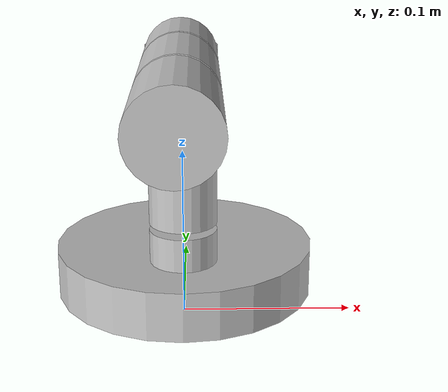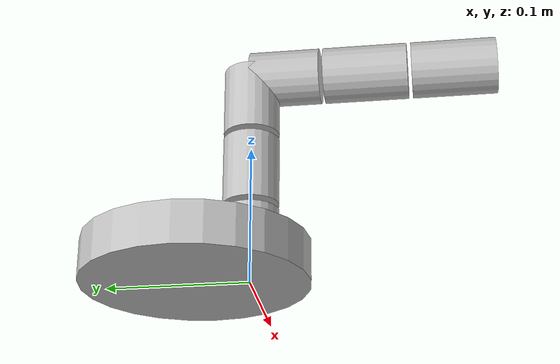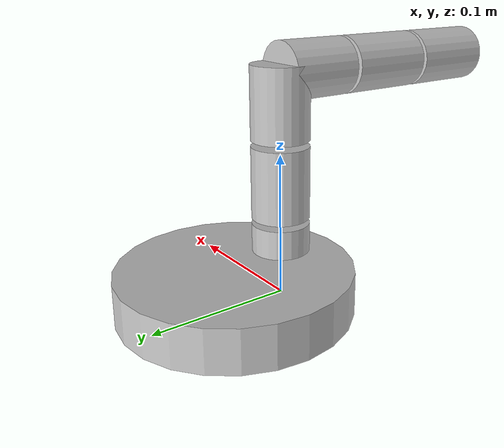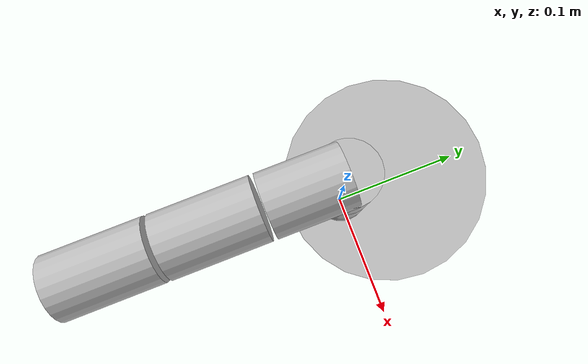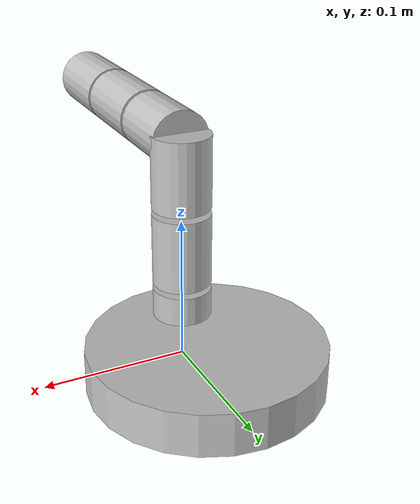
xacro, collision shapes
<?xml version="1.0"?>
<robot name="poppy" xmlns:xacro="http://ros.org/wiki/xacro">
  <xacro:include filename="$(find poppy_description)/urdf/poppy.xacro" />
  <xacro:include filename="$(find poppy_description)/urdf/poppy.ros2_control.xacro" />

  <link name="world"/>

  <xacro:poppy parent="world">
    <origin xyz="0 0 0" rpy="0 0 0" />
  </xacro:poppy>

  <xacro:poppy_ros2_control name="poppy_ros2_control" />
</robot>

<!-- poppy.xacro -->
<robot xmlns:xacro="http://www.ros.org/wiki/xacro">
<!-- Import Rviz colors -->
<xacro:include filename="$(find poppy_description)/urdf/poppy.material.xacro" />

  <xacro:macro name="poppy" params="parent *origin">
  <joint name="origin_to_link1" type="fixed">
    <xacro:insert_block name="origin" />
    <parent link="${parent}" />
    <child link="base_link" />
    <axis xyz="0 0 1" />
  </joint>

  <!-- Base link -->
  <link name="base_link">
    <visual>
      <origin xyz="0 0 0" rpy="0 0 0" />
      <geometry>
        <mesh filename="package://poppy_description/meshes/base.dae" />
      </geometry>
      <material name="darkgrey"/>
    </visual>
    <collision>
      <origin xyz="0 0.038 0.015" rpy="0 0 0" />
      <geometry>
        <cylinder length="0.03" radius="0.08" />
      </geometry>
    </collision>
  </link>
  <!-- Motor 1 -->
  <joint name="m1" type="revolute">
    <origin xyz="0 0 0.0327993216120967" rpy="0 0 0" />
    <parent link="base_link" />
    <child link="link1" />
    <axis xyz="0 0 1" />
      <limit velocity="10.1" effort="1.0" lower="${-150*(pi/180)}" upper="${150*(pi/180)}" />
  </joint>
  <!-- Link 1 -->
  <link name="link1">
    <visual>
      <origin xyz="0 0 0" rpy="0 0 0" />
      <geometry>
        <mesh filename="package://poppy_description/meshes/long_U.dae" />
      </geometry>
      <material name="darkgrey"/>
    </visual>
    <collision>
      <origin xyz="0 0 0.01" rpy="0 0 0" />
      <geometry>
        <cylinder length="0.02" radius="0.02" />
      </geometry>
    </collision>
    <inertial>
      <mass value="0.1" />
      <inertia ixx="0.03" iyy="0.03" izz="0.03" ixy="0.0" ixz="0.0" iyz="0.0" />
    </inertial>
  </link>
  <!-- Motor 2 -->
  <joint name="m2" type="revolute">
    <origin xyz="0 0 0.0240006783879033" rpy="0 -1.5707963267949 0" />
    <parent link="link1" />
    <child link="link2" />
    <axis xyz="0 0 1" />
      <limit velocity="10.1" effort="1.0" lower="${-150*(pi/180)}" upper="${150*(pi/180)}" />
  </joint>
  <!-- link2 -->
  <link name="link2">
    <visual>
      <origin xyz="0 0 0" rpy="0 1.5707963267949 0" />
      <geometry>
        <mesh filename="package://poppy_description/meshes/section_1.dae" />
      </geometry>
      <material name="darkgrey"/>
    </visual>
    <collision>
      <origin xyz="0.025 0 0" rpy="0 1.5707963267949 0" />
      <geometry>
        <cylinder length="0.05" radius="0.02" />
      </geometry>
    </collision>
    <inertial>
      <mass value="0.1" />
      <inertia ixx="0.03" iyy="0.03" izz="0.03" ixy="0.0" ixz="0.0" iyz="0.0" />
    </inertial>
  </link>
  <!-- Motor 3 -->
  <joint name="m3" type="revolute">
    <origin xyz="0.054 0 0" rpy="0 0 0" />
    <parent link="link2" />
    <child link="link3" />
    <axis xyz="0 0 1" />
      <limit velocity="10.1" effort="1.0" lower="${-150*(pi/180)}" upper="${150*(pi/180)}" />
  </joint>
  <!-- link3 -->
  <link name="link3">
    <visual>
      <origin xyz="0 0 0" rpy="0 1.5707963267949 0" />
      <geometry>
        <mesh filename="package://poppy_description/meshes/section_2.dae" />
      </geometry>
      <material name="darkgrey"/>
    </visual>
    <collision>
      <origin xyz="0.025 0 0" rpy="0 1.5707963267949 0" />
      <geometry>
        <cylinder length="0.05" radius="0.02" />
      </geometry>
    </collision>
    <inertial>
      <mass value="0.1" />
      <inertia ixx="0.03" iyy="0.03" izz="0.03" ixy="0.0" ixz="0.0" iyz="0.0" />
    </inertial>
  </link>
  <!-- Motor 4 -->
  <joint name="m4" type="revolute">
    <origin xyz="0.045 0 0" rpy="0 -1.5707963267949 0" />
    <parent link="link3" />
    <child link="link4" />
    <axis xyz="0 0 -1" />
      <limit velocity="10.1" effort="1.0" lower="${-150*(pi/180)}" upper="${150*(pi/180)}" />
  </joint>
  <!-- link4 -->
  <link name="link4">
    <visual>
      <origin xyz="0 0 0" rpy="0 3.14159268 0" />
      <geometry>
        <mesh filename="package://poppy_description/meshes/section_3.dae" />
      </geometry>
      <material name="darkgrey"/>
    </visual>
    <collision>
      <origin xyz="0 -0.025 0" rpy="1.5707963267949 0 0" />
      <geometry>
        <cylinder length="0.05" radius="0.02" />
      </geometry>
    </collision>
    <inertial>
      <mass value="0.1" />
      <inertia ixx="0.03" iyy="0.03" izz="0.03" ixy="0.0" ixz="0.0" iyz="0.0" />
    </inertial>
  </link>
    <!-- Motor 5 -->
  <joint name="m5" type="revolute">
    <origin xyz="0 -0.048 0" rpy="0 -1.5707963267949 0" />
    <parent link="link4" />
    <child link="link5" />
    <axis xyz="0 0 -1" />
  <limit velocity="10.1" effort="1.0" lower="${-150*(pi/180)}" upper="${150*(pi/180)}" />
  </joint>
  <!-- link5 -->
  <link name="link5">
    <visual>
      <origin xyz="0 -0.058 0" rpy="0 -1.5707963267949 0" />
      <geometry>
        <mesh filename="package://poppy_description/meshes/section_4.dae" />
      </geometry>
      <material name="darkgrey"/>
    </visual>
    <collision>
      <origin xyz="0 -0.035 0" rpy="1.5707963267949 0 0" />
      <geometry>
        <cylinder length="0.06" radius="0.02" />
        <box size="0.05 0.02 0.03" />
      </geometry>
    </collision>
    <inertial>
      <mass value="0.1" />
      <inertia ixx="0.03" iyy="0.03" izz="0.03" ixy="0.0" ixz="0.0" iyz="0.0" />
    </inertial>
  </link>
  <!--Fixed tip -->
  <joint name="t6g" type="fixed">
    <origin xyz="0 -0.116 0" rpy="0 0 0" />
    <parent link="link5" />
    <child link="virtual_tip" />
  </joint>
  <link name="virtual_tip" />
  <!-- gripper -->
  <!-- Motor 6 -->
  <joint name="m6" type="revolute">
    <origin xyz="0 0.058 0" rpy="0 -1.5707963267949 0" />
    <parent link="virtual_tip" />
    <child link="gripper" />
    <axis xyz="0 0 1" />
    <limit velocity="10.1" effort="1.0" lower="${-90*(pi/180)}" upper="${25*(pi/180)}" />
  </joint>
  <link name="gripper">
    <visual>
      <origin xyz="0 0 0" rpy="0 0 0" />
      <geometry>
      <mesh filename="package://poppy_description/meshes/gripper.dae" />
      </geometry>
      <material name="darkgrey"/>
    </visual>
    <collision>
      <origin xyz="0 -0.04 0" rpy="-1.5707963267949 0 0" />
      <geometry>
        <cylinder length="0.06" radius="0.02" />
      </geometry>
    </collision>
    <inertial>
      <mass value="0.1" />
      <inertia ixx="0.03" iyy="0.03" izz="0.03" ixy="0.0" ixz="0.0" iyz="0.0" />
    </inertial>
  </link>
  <!-- Moving tip of gripper -->
  <joint name="t7m" type="fixed">
    <origin xyz="0 -0.052 0" rpy="-1.5707963267949 0 0" />
    <parent link="gripper" />
    <child link="moving_tip" />
  </joint>
  <link name="moving_tip" />
</xacro:macro>
</robot>

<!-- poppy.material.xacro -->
<robot>

  <material name="black">
    <color rgba="0.0 0.0 0.0 1.0"/>
  </material>

  <material name="white">
    <color rgba="1.0 1.0 1.0 1.0"/>
  </material>

  <material name="red">
    <color rgba="0.8 0.0 0.0 1.0"/>
  </material>

  <material name="blue">
    <color rgba="0.0 0.0 0.8 1.0"/>
  </material>

  <material name="green">
    <color rgba="0.0 0.8 0.0 1.0"/>
  </material>

  <material name="grey">
    <color rgba="0.5 0.5 0.5 1.0"/>
  </material>

  <material name="darkgrey">
    <color rgba="0.752941176470588 0.752941176470588 0.752941176470588 1" />
  </material>

</robot>
